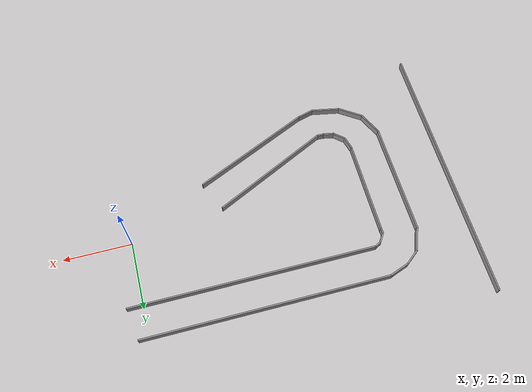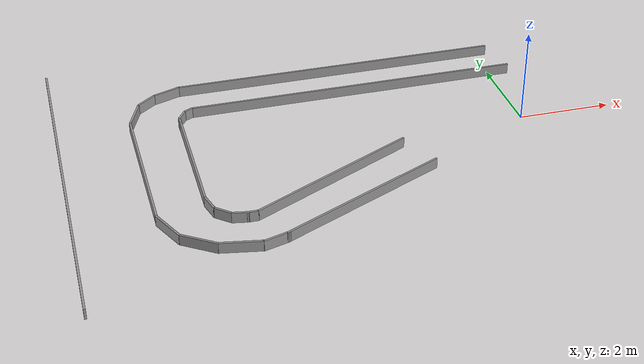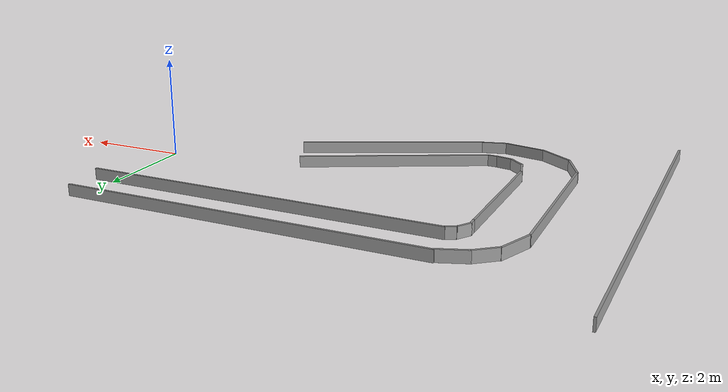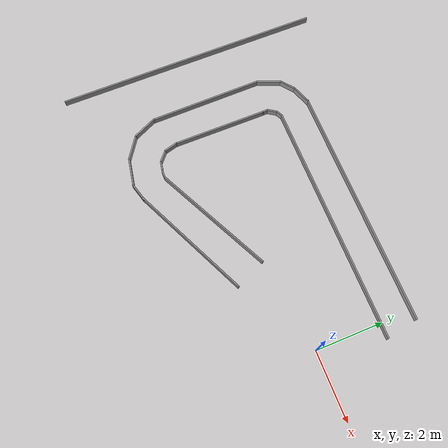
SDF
<sdf version="1.5">
 <world name="default">
  <model name="grey_wall_2">
   <link name="link">
    <pose>0 0 1.4 0 -0 0</pose>
    <inertial>
     <inertia><ixx>nan</ixx><ixy>0</ixy><ixz>0</ixz><iyy>nan</iyy><iyz>0</iyz><izz>nan</izz></inertia>
     <mass>0</mass>
    </inertial>
    <visual name="visual">
     <cast_shadows>0</cast_shadows>
     <geometry><box><size>7.20978 0.043266 0.226147</size></box></geometry>
     <material>
      <script>
       <uri>model://grey_wall/materials/scripts</uri>
       <uri>model://grey_wall/materials/textures</uri>
       <name>vrc/grey_wall</name>
      </script>
      <ambient>1 1 1 1</ambient>
      <diffuse>1 1 1 1</diffuse>
      <specular>0 0 0 1</specular>
      <emissive>0 0 0 1</emissive>
     </material>
    </visual>
    <collision name="collision">
     <geometry><box><size>7.20978 0.043266 0.226147</size></box></geometry>
     <surface>
      <friction>
       <ode><mu>1</mu><mu2>1</mu2><fdir1>0 0 0</fdir1><slip1>0</slip1><slip2>0</slip2></ode>
       <torsional>
        <coefficient>1</coefficient>
        <patch_radius>0</patch_radius>
        <surface_radius>0</surface_radius>
        <use_patch_radius>1</use_patch_radius>
        <ode><slip>0</slip></ode>
       </torsional>
      </friction>
      <bounce><restitution_coefficient>0</restitution_coefficient><threshold>1e+06</threshold></bounce>
      <contact>
       <collide_without_contact>0</collide_without_contact>
       <collide_without_contact_bitmask>1</collide_without_contact_bitmask>
       <collide_bitmask>1</collide_bitmask>
       <ode>
        <soft_cfm>0</soft_cfm>
        <soft_erp>0.2</soft_erp>
        <kp>1e+13</kp>
        <kd>1</kd>
        <max_vel>0.01</max_vel>
        <min_depth>0</min_depth>
       </ode>
       <bullet>
        <split_impulse>1</split_impulse>
        <split_impulse_penetration_threshold>-0.01</split_impulse_penetration_threshold>
        <soft_cfm>0</soft_cfm>
        <soft_erp>0.2</soft_erp>
        <kp>1e+13</kp>
        <kd>1</kd>
       </bullet>
      </contact>
     </surface>
    </collision>
   </link>
   <static>1</static>
   <pose>-3.31818 2.85803 -1.30759 0 -0 0</pose>
  </model>
  <model name="grey_wall_5">
   <link name="link">
    <pose>-0.467859 -0.097477 1.4 0 -0 0.009516</pose>
    <inertial>
     <inertia><ixx>nan</ixx><ixy>0</ixy><ixz>0</ixz><iyy>nan</iyy><iyz>0</iyz><izz>nan</izz></inertia>
     <mass>0</mass>
    </inertial>
    <visual name="visual">
     <cast_shadows>0</cast_shadows>
     <geometry><box><size>8.07319 0.043266 0.226147</size></box></geometry>
     <material>
      <script>
       <uri>model://grey_wall/materials/scripts</uri>
       <uri>model://grey_wall/materials/textures</uri>
       <name>vrc/grey_wall</name>
      </script>
      <ambient>1 1 1 1</ambient>
      <diffuse>1 1 1 1</diffuse>
      <specular>0 0 0 1</specular>
      <emissive>0 0 0 1</emissive>
     </material>
    </visual>
    <collision name="collision">
     <geometry><box><size>8.07319 0.043266 0.226147</size></box></geometry>
     <surface>
      <friction>
       <ode><mu>1</mu><mu2>1</mu2><fdir1>0 0 0</fdir1><slip1>0</slip1><slip2>0</slip2></ode>
       <torsional>
        <coefficient>1</coefficient>
        <patch_radius>0</patch_radius>
        <surface_radius>0</surface_radius>
        <use_patch_radius>1</use_patch_radius>
        <ode><slip>0</slip></ode>
       </torsional>
      </friction>
      <bounce><restitution_coefficient>0</restitution_coefficient><threshold>1e+06</threshold></bounce>
      <contact>
       <collide_without_contact>0</collide_without_contact>
       <collide_without_contact_bitmask>1</collide_without_contact_bitmask>
       <collide_bitmask>1</collide_bitmask>
       <ode>
        <soft_cfm>0</soft_cfm>
        <soft_erp>0.2</soft_erp>
        <kp>1e+13</kp>
        <kd>1</kd>
        <max_vel>0.01</max_vel>
        <min_depth>0</min_depth>
       </ode>
       <bullet>
        <split_impulse>1</split_impulse>
        <split_impulse_penetration_threshold>-0.01</split_impulse_penetration_threshold>
        <soft_cfm>0</soft_cfm>
        <soft_erp>0.2</soft_erp>
        <kp>1e+13</kp>
        <kd>1</kd>
       </bullet>
      </contact>
     </surface>
    </collision>
   </link>
   <static>1</static>
   <pose>-9.73387 0.474906 -1.30963 0 -0 1.55954</pose>
  </model>
  <model name="grey_wall_7">
   <link name="link">
    <pose>-0.064175 -0.02969 1.4 0 -0 0.020488</pose>
    <inertial>
     <inertia><ixx>nan</ixx><ixy>0</ixy><ixz>0</ixz><iyy>nan</iyy><iyz>0</iyz><izz>nan</izz></inertia>
     <mass>0</mass>
    </inertial>
    <visual name="visual">
     <cast_shadows>0</cast_shadows>
     <geometry><box><size>3.42398 0.043266 0.226147</size></box></geometry>
     <material>
      <script>
       <uri>model://grey_wall/materials/scripts</uri>
       <uri>model://grey_wall/materials/textures</uri>
       <name>vrc/grey_wall</name>
      </script>
      <ambient>1 1 1 1</ambient>
      <diffuse>1 1 1 1</diffuse>
      <specular>0 0 0 1</specular>
      <emissive>0 0 0 1</emissive>
     </material>
    </visual>
    <collision name="collision">
     <geometry><box><size>3.42398 0.043266 0.226147</size></box></geometry>
     <surface>
      <friction>
       <ode><mu>1</mu><mu2>1</mu2><fdir1>0 0 0</fdir1><slip1>0</slip1><slip2>0</slip2></ode>
       <torsional>
        <coefficient>1</coefficient>
        <patch_radius>0</patch_radius>
        <surface_radius>0</surface_radius>
        <use_patch_radius>1</use_patch_radius>
        <ode><slip>0</slip></ode>
       </torsional>
      </friction>
      <bounce><restitution_coefficient>0</restitution_coefficient><threshold>1e+06</threshold></bounce>
      <contact>
       <collide_without_contact>0</collide_without_contact>
       <collide_without_contact_bitmask>1</collide_without_contact_bitmask>
       <collide_bitmask>1</collide_bitmask>
       <ode>
        <soft_cfm>0</soft_cfm>
        <soft_erp>0.2</soft_erp>
        <kp>1e+13</kp>
        <kd>1</kd>
        <max_vel>0.01</max_vel>
        <min_depth>0</min_depth>
       </ode>
       <bullet>
        <split_impulse>1</split_impulse>
        <split_impulse_penetration_threshold>-0.01</split_impulse_penetration_threshold>
        <soft_cfm>0</soft_cfm>
        <soft_erp>0.2</soft_erp>
        <kp>1e+13</kp>
        <kd>1</kd>
       </bullet>
      </contact>
     </surface>
    </collision>
   </link>
   <static>1</static>
   <pose>-8.11068 0.042246 -1.30963 0 -0 1.55954</pose>
  </model>
  <model name="grey_wall_8">
   <link name="link">
    <pose>0.112948 -0.0488 1.4 0 0 -0.362822</pose>
    <inertial>
     <inertia><ixx>nan</ixx><ixy>0</ixy><ixz>0</ixz><iyy>nan</iyy><iyz>0</iyz><izz>nan</izz></inertia>
     <mass>0</mass>
    </inertial>
    <visual name="visual">
     <cast_shadows>0</cast_shadows>
     <geometry><box><size>0.753854 0.043266 0.226147</size></box></geometry>
     <material>
      <script>
       <uri>model://grey_wall/materials/scripts</uri>
       <uri>model://grey_wall/materials/textures</uri>
       <name>vrc/grey_wall</name>
      </script>
      <ambient>1 1 1 1</ambient>
      <diffuse>1 1 1 1</diffuse>
      <specular>0 0 0 1</specular>
      <emissive>0 0 0 1</emissive>
     </material>
    </visual>
    <collision name="collision">
     <geometry><box><size>0.753854 0.043266 0.226147</size></box></geometry>
     <surface>
      <friction>
       <ode><mu>1</mu><mu2>1</mu2><fdir1>0 0 0</fdir1><slip1>0</slip1><slip2>0</slip2></ode>
       <torsional>
        <coefficient>1</coefficient>
        <patch_radius>0</patch_radius>
        <surface_radius>0</surface_radius>
        <use_patch_radius>1</use_patch_radius>
        <ode><slip>0</slip></ode>
       </torsional>
      </friction>
      <bounce><restitution_coefficient>0</restitution_coefficient><threshold>1e+06</threshold></bounce>
      <contact>
       <collide_without_contact>0</collide_without_contact>
       <collide_without_contact_bitmask>1</collide_without_contact_bitmask>
       <collide_bitmask>1</collide_bitmask>
       <ode>
        <soft_cfm>0</soft_cfm>
        <soft_erp>0.2</soft_erp>
        <kp>1e+13</kp>
        <kd>1</kd>
        <max_vel>0.01</max_vel>
        <min_depth>0</min_depth>
       </ode>
       <bullet>
        <split_impulse>1</split_impulse>
        <split_impulse_penetration_threshold>-0.01</split_impulse_penetration_threshold>
        <soft_cfm>0</soft_cfm>
        <soft_erp>0.2</soft_erp>
        <kp>1e+13</kp>
        <kd>1</kd>
       </bullet>
      </contact>
     </surface>
    </collision>
   </link>
   <static>1</static>
   <pose>-8.0118 1.89691 -1.30963 0 -0 1.55954</pose>
  </model>
  <model name="grey_wall_9">
   <link name="link">
    <pose>-0.058506 -0.047315 1.4 0 -0 0.675401</pose>
    <inertial>
     <inertia><ixx>nan</ixx><ixy>0</ixy><ixz>0</ixz><iyy>nan</iyy><iyz>0</iyz><izz>nan</izz></inertia>
     <mass>0</mass>
    </inertial>
    <visual name="visual">
     <cast_shadows>0</cast_shadows>
     <geometry><box><size>0.500666 0.043266 0.226147</size></box></geometry>
     <material>
      <script>
       <uri>model://grey_wall/materials/scripts</uri>
       <uri>model://grey_wall/materials/textures</uri>
       <name>vrc/grey_wall</name>
      </script>
      <ambient>1 1 1 1</ambient>
      <diffuse>1 1 1 1</diffuse>
      <specular>0 0 0 1</specular>
      <emissive>0 0 0 1</emissive>
     </material>
    </visual>
    <collision name="collision">
     <geometry><box><size>0.500666 0.043266 0.226147</size></box></geometry>
     <surface>
      <friction>
       <ode><mu>1</mu><mu2>1</mu2><fdir1>0 0 0</fdir1><slip1>0</slip1><slip2>0</slip2></ode>
       <torsional>
        <coefficient>1</coefficient>
        <patch_radius>0</patch_radius>
        <surface_radius>0</surface_radius>
        <use_patch_radius>1</use_patch_radius>
        <ode><slip>0</slip></ode>
       </torsional>
      </friction>
      <bounce><restitution_coefficient>0</restitution_coefficient><threshold>1e+06</threshold></bounce>
      <contact>
       <collide_without_contact>0</collide_without_contact>
       <collide_without_contact_bitmask>1</collide_without_contact_bitmask>
       <collide_bitmask>1</collide_bitmask>
       <ode>
        <soft_cfm>0</soft_cfm>
        <soft_erp>0.2</soft_erp>
        <kp>1e+13</kp>
        <kd>1</kd>
        <max_vel>0.01</max_vel>
        <min_depth>0</min_depth>
       </ode>
       <bullet>
        <split_impulse>1</split_impulse>
        <split_impulse_penetration_threshold>-0.01</split_impulse_penetration_threshold>
        <soft_cfm>0</soft_cfm>
        <soft_erp>0.2</soft_erp>
        <kp>1e+13</kp>
        <kd>1</kd>
       </bullet>
      </contact>
     </surface>
    </collision>
   </link>
   <static>1</static>
   <pose>-7.5792 2.5463 -1.30539 0 -0 0</pose>
  </model>
  <model name="grey_wall_10">
   <link name="link">
    <pose>-0.124295 -0.038559 1.4 0 -0 0.344466</pose>
    <inertial>
     <inertia><ixx>nan</ixx><ixy>0</ixy><ixz>0</ixz><iyy>nan</iyy><iyz>0</iyz><izz>nan</izz></inertia>
     <mass>0</mass>
    </inertial>
    <visual name="visual">
     <cast_shadows>0</cast_shadows>
     <geometry><box><size>0.619827 0.043266 0.226147</size></box></geometry>
     <material>
      <script>
       <uri>model://grey_wall/materials/scripts</uri>
       <uri>model://grey_wall/materials/textures</uri>
       <name>vrc/grey_wall</name>
      </script>
      <ambient>1 1 1 1</ambient>
      <diffuse>1 1 1 1</diffuse>
      <specular>0 0 0 1</specular>
      <emissive>0 0 0 1</emissive>
     </material>
    </visual>
    <collision name="collision">
     <geometry><box><size>0.619827 0.043266 0.226147</size></box></geometry>
     <surface>
      <friction>
       <ode><mu>1</mu><mu2>1</mu2><fdir1>0 0 0</fdir1><slip1>0</slip1><slip2>0</slip2></ode>
       <torsional>
        <coefficient>1</coefficient>
        <patch_radius>0</patch_radius>
        <surface_radius>0</surface_radius>
        <use_patch_radius>1</use_patch_radius>
        <ode><slip>0</slip></ode>
       </torsional>
      </friction>
      <bounce><restitution_coefficient>0</restitution_coefficient><threshold>1e+06</threshold></bounce>
      <contact>
       <collide_without_contact>0</collide_without_contact>
       <collide_without_contact_bitmask>1</collide_without_contact_bitmask>
       <collide_bitmask>1</collide_bitmask>
       <ode>
        <soft_cfm>0</soft_cfm>
        <soft_erp>0.2</soft_erp>
        <kp>1e+13</kp>
        <kd>1</kd>
        <max_vel>0.01</max_vel>
        <min_depth>0</min_depth>
       </ode>
       <bullet>
        <split_impulse>1</split_impulse>
        <split_impulse_penetration_threshold>-0.01</split_impulse_penetration_threshold>
        <soft_cfm>0</soft_cfm>
        <soft_erp>0.2</soft_erp>
        <kp>1e+13</kp>
        <kd>1</kd>
       </bullet>
      </contact>
     </surface>
    </collision>
   </link>
   <static>1</static>
   <pose>-7.0396 2.79261 -1.30539 0 -0 0</pose>
  </model>
  <model name="grey_wall_11">
   <link name="link">
    <pose>-0.026662 0.026915 1.4 0 -0 0.431274</pose>
    <inertial>
     <inertia><ixx>nan</ixx><ixy>0</ixy><ixz>0</ixz><iyy>nan</iyy><iyz>0</iyz><izz>nan</izz></inertia>
     <mass>0</mass>
    </inertial>
    <visual name="visual">
     <cast_shadows>0</cast_shadows>
     <geometry><box><size>3.81606 0.043266 0.226147</size></box></geometry>
     <material>
      <script>
       <uri>model://grey_wall/materials/scripts</uri>
       <uri>model://grey_wall/materials/textures</uri>
       <name>vrc/grey_wall</name>
      </script>
      <ambient>1 1 1 1</ambient>
      <diffuse>1 1 1 1</diffuse>
      <specular>0 0 0 1</specular>
      <emissive>0 0 0 1</emissive>
     </material>
    </visual>
    <collision name="collision">
     <geometry><box><size>3.81606 0.043266 0.226147</size></box></geometry>
     <surface>
      <friction>
       <ode><mu>1</mu><mu2>1</mu2><fdir1>0 0 0</fdir1><slip1>0</slip1><slip2>0</slip2></ode>
       <torsional>
        <coefficient>1</coefficient>
        <patch_radius>0</patch_radius>
        <surface_radius>0</surface_radius>
        <use_patch_radius>1</use_patch_radius>
        <ode><slip>0</slip></ode>
       </torsional>
      </friction>
      <bounce><restitution_coefficient>0</restitution_coefficient><threshold>1e+06</threshold></bounce>
      <contact>
       <collide_without_contact>0</collide_without_contact>
       <collide_without_contact_bitmask>1</collide_without_contact_bitmask>
       <collide_bitmask>1</collide_bitmask>
       <ode>
        <soft_cfm>0</soft_cfm>
        <soft_erp>0.2</soft_erp>
        <kp>1e+13</kp>
        <kd>1</kd>
        <max_vel>0.01</max_vel>
        <min_depth>0</min_depth>
       </ode>
       <bullet>
        <split_impulse>1</split_impulse>
        <split_impulse_penetration_threshold>-0.01</split_impulse_penetration_threshold>
        <soft_cfm>0</soft_cfm>
        <soft_erp>0.2</soft_erp>
        <kp>1e+13</kp>
        <kd>1</kd>
       </bullet>
      </contact>
     </surface>
    </collision>
   </link>
   <static>1</static>
   <pose>-4.07016 -2.10175 -1.30331 0 -0 0</pose>
  </model>
  <model name="grey_wall_14">
   <link name="link">
    <pose>-0.07983 0.081676 1.4 0 0 -0.601795</pose>
    <inertial>
     <inertia><ixx>nan</ixx><ixy>0</ixy><ixz>0</ixz><iyy>nan</iyy><iyz>0</iyz><izz>nan</izz></inertia>
     <mass>0</mass>
    </inertial>
    <visual name="visual">
     <cast_shadows>0</cast_shadows>
     <geometry><box><size>0.789146 0.043266 0.226147</size></box></geometry>
     <material>
      <script>
       <uri>model://grey_wall/materials/scripts</uri>
       <uri>model://grey_wall/materials/textures</uri>
       <name>vrc/grey_wall</name>
      </script>
      <ambient>1 1 1 1</ambient>
      <diffuse>1 1 1 1</diffuse>
      <specular>0 0 0 1</specular>
      <emissive>0 0 0 1</emissive>
     </material>
    </visual>
    <collision name="collision">
     <geometry><box><size>0.789146 0.043266 0.226147</size></box></geometry>
     <surface>
      <friction>
       <ode><mu>1</mu><mu2>1</mu2><fdir1>0 0 0</fdir1><slip1>0</slip1><slip2>0</slip2></ode>
       <torsional>
        <coefficient>1</coefficient>
        <patch_radius>0</patch_radius>
        <surface_radius>0</surface_radius>
        <use_patch_radius>1</use_patch_radius>
        <ode><slip>0</slip></ode>
       </torsional>
      </friction>
      <bounce><restitution_coefficient>0</restitution_coefficient><threshold>1e+06</threshold></bounce>
      <contact>
       <collide_without_contact>0</collide_without_contact>
       <collide_without_contact_bitmask>1</collide_without_contact_bitmask>
       <collide_bitmask>1</collide_bitmask>
       <ode>
        <soft_cfm>0</soft_cfm>
        <soft_erp>0.2</soft_erp>
        <kp>1e+13</kp>
        <kd>1</kd>
        <max_vel>0.01</max_vel>
        <min_depth>0</min_depth>
       </ode>
       <bullet>
        <split_impulse>1</split_impulse>
        <split_impulse_penetration_threshold>-0.01</split_impulse_penetration_threshold>
        <soft_cfm>0</soft_cfm>
        <soft_erp>0.2</soft_erp>
        <kp>1e+13</kp>
        <kd>1</kd>
       </bullet>
      </contact>
     </surface>
    </collision>
   </link>
   <static>1</static>
   <pose>-7.35341 -2.70293 -1.30539 0 -0 0</pose>
  </model>
  <model name="grey_wall_15">
   <link name="link">
    <pose>0.107141 -0.075692 1.4 0 -0 2.00429</pose>
    <inertial>
     <inertia><ixx>nan</ixx><ixy>0</ixy><ixz>0</ixz><iyy>nan</iyy><iyz>0</iyz><izz>nan</izz></inertia>
     <mass>0</mass>
    </inertial>
    <visual name="visual">
     <cast_shadows>0</cast_shadows>
     <geometry><box><size>0.783473 0.043266 0.226147</size></box></geometry>
     <material>
      <script>
       <uri>model://grey_wall/materials/scripts</uri>
       <uri>model://grey_wall/materials/textures</uri>
       <name>vrc/grey_wall</name>
      </script>
      <ambient>1 1 1 1</ambient>
      <diffuse>1 1 1 1</diffuse>
      <specular>0 0 0 1</specular>
      <emissive>0 0 0 1</emissive>
     </material>
    </visual>
    <collision name="collision">
     <geometry><box><size>0.783473 0.043266 0.226147</size></box></geometry>
     <surface>
      <friction>
       <ode><mu>1</mu><mu2>1</mu2><fdir1>0 0 0</fdir1><slip1>0</slip1><slip2>0</slip2></ode>
       <torsional>
        <coefficient>1</coefficient>
        <patch_radius>0</patch_radius>
        <surface_radius>0</surface_radius>
        <use_patch_radius>1</use_patch_radius>
        <ode><slip>0</slip></ode>
       </torsional>
      </friction>
      <bounce><restitution_coefficient>0</restitution_coefficient><threshold>1e+06</threshold></bounce>
      <contact>
       <collide_without_contact>0</collide_without_contact>
       <collide_without_contact_bitmask>1</collide_without_contact_bitmask>
       <collide_bitmask>1</collide_bitmask>
       <ode>
        <soft_cfm>0</soft_cfm>
        <soft_erp>0.2</soft_erp>
        <kp>1e+13</kp>
        <kd>1</kd>
        <max_vel>0.01</max_vel>
        <min_depth>0</min_depth>
       </ode>
       <bullet>
        <split_impulse>1</split_impulse>
        <split_impulse_penetration_threshold>-0.01</split_impulse_penetration_threshold>
        <soft_cfm>0</soft_cfm>
        <soft_erp>0.2</soft_erp>
        <kp>1e+13</kp>
        <kd>1</kd>
       </bullet>
      </contact>
     </surface>
    </collision>
   </link>
   <static>1</static>
   <pose>-8.01965 -1.98265 -1.30539 0 -0 0</pose>
  </model>
  <model name="grey_wall_19">
   <link name="link">
    <pose>0.087469 0.011541 1.4 0 0 -0.183893</pose>
    <inertial>
     <inertia><ixx>nan</ixx><ixy>0</ixy><ixz>0</ixz><iyy>nan</iyy><iyz>0</iyz><izz>nan</izz></inertia>
     <mass>0</mass>
    </inertial>
    <visual name="visual">
     <cast_shadows>0</cast_shadows>
     <geometry><box><size>0.85162 0.043266 0.226147</size></box></geometry>
     <material>
      <script>
       <uri>model://grey_wall/materials/scripts</uri>
       <uri>model://grey_wall/materials/textures</uri>
       <name>vrc/grey_wall</name>
      </script>
      <ambient>1 1 1 1</ambient>
      <diffuse>1 1 1 1</diffuse>
      <specular>0 0 0 1</specular>
      <emissive>0 0 0 1</emissive>
     </material>
    </visual>
    <collision name="collision">
     <geometry><box><size>0.85162 0.043266 0.226147</size></box></geometry>
     <surface>
      <friction>
       <ode><mu>1</mu><mu2>1</mu2><fdir1>0 0 0</fdir1><slip1>0</slip1><slip2>0</slip2></ode>
       <torsional>
        <coefficient>1</coefficient>
        <patch_radius>0</patch_radius>
        <surface_radius>0</surface_radius>
        <use_patch_radius>1</use_patch_radius>
        <ode><slip>0</slip></ode>
       </torsional>
      </friction>
      <bounce><restitution_coefficient>0</restitution_coefficient><threshold>1e+06</threshold></bounce>
      <contact>
       <collide_without_contact>0</collide_without_contact>
       <collide_without_contact_bitmask>1</collide_without_contact_bitmask>
       <collide_bitmask>1</collide_bitmask>
       <ode>
        <soft_cfm>0</soft_cfm>
        <soft_erp>0.2</soft_erp>
        <kp>1e+13</kp>
        <kd>1</kd>
        <max_vel>0.01</max_vel>
        <min_depth>0</min_depth>
       </ode>
       <bullet>
        <split_impulse>1</split_impulse>
        <split_impulse_penetration_threshold>-0.01</split_impulse_penetration_threshold>
        <soft_cfm>0</soft_cfm>
        <soft_erp>0.2</soft_erp>
        <kp>1e+13</kp>
        <kd>1</kd>
       </bullet>
      </contact>
     </surface>
    </collision>
   </link>
   <static>1</static>
   <pose>-6.79091 -2.92555 -1.30539 0 -0 0</pose>
  </model>
  <model name="grey_wall_20">
   <link name="link">
    <pose>-0.003183 0.005606 1.4 0 -0 0.275384</pose>
    <inertial>
     <inertia><ixx>nan</ixx><ixy>0</ixy><ixz>0</ixz><iyy>nan</iyy><iyz>0</iyz><izz>nan</izz></inertia>
     <mass>0</mass>
    </inertial>
    <visual name="visual">
     <cast_shadows>0</cast_shadows>
     <geometry><box><size>0.558925 0.043266 0.226147</size></box></geometry>
     <material>
      <script>
       <uri>model://grey_wall/materials/scripts</uri>
       <uri>model://grey_wall/materials/textures</uri>
       <name>vrc/grey_wall</name>
      </script>
      <ambient>1 1 1 1</ambient>
      <diffuse>1 1 1 1</diffuse>
      <specular>0 0 0 1</specular>
      <emissive>0 0 0 1</emissive>
     </material>
    </visual>
    <collision name="collision">
     <geometry><box><size>0.558925 0.043266 0.226147</size></box></geometry>
     <surface>
      <friction>
       <ode><mu>1</mu><mu2>1</mu2><fdir1>0 0 0</fdir1><slip1>0</slip1><slip2>0</slip2></ode>
       <torsional>
        <coefficient>1</coefficient>
        <patch_radius>0</patch_radius>
        <surface_radius>0</surface_radius>
        <use_patch_radius>1</use_patch_radius>
        <ode><slip>0</slip></ode>
       </torsional>
      </friction>
      <bounce><restitution_coefficient>0</restitution_coefficient><threshold>1e+06</threshold></bounce>
      <contact>
       <collide_without_contact>0</collide_without_contact>
       <collide_without_contact_bitmask>1</collide_without_contact_bitmask>
       <collide_bitmask>1</collide_bitmask>
       <ode>
        <soft_cfm>0</soft_cfm>
        <soft_erp>0.2</soft_erp>
        <kp>1e+13</kp>
        <kd>1</kd>
        <max_vel>0.01</max_vel>
        <min_depth>0</min_depth>
       </ode>
       <bullet>
        <split_impulse>1</split_impulse>
        <split_impulse_penetration_threshold>-0.01</split_impulse_penetration_threshold>
        <soft_cfm>0</soft_cfm>
        <soft_erp>0.2</soft_erp>
        <kp>1e+13</kp>
        <kd>1</kd>
       </bullet>
      </contact>
     </surface>
    </collision>
   </link>
   <static>1</static>
   <pose>-6.02923 -2.92892 -1.30539 0 -0 0</pose>
  </model>
  <model name="grey_wall_25">
   <link name="link">
    <pose>0.017817 -0.013769 1.4 0 -0 0.455224</pose>
    <inertial>
     <inertia><ixx>nan</ixx><ixy>0</ixy><ixz>0</ixz><iyy>nan</iyy><iyz>0</iyz><izz>nan</izz></inertia>
     <mass>0</mass>
    </inertial>
    <visual name="visual">
     <cast_shadows>0</cast_shadows>
     <geometry><box><size>3.81606 0.043266 0.226147</size></box></geometry>
     <material>
      <script>
       <uri>model://grey_wall/materials/scripts</uri>
       <uri>model://grey_wall/materials/textures</uri>
       <name>vrc/grey_wall</name>
      </script>
      <ambient>1 1 1 1</ambient>
      <diffuse>1 1 1 1</diffuse>
      <specular>0 0 0 1</specular>
      <emissive>0 0 0 1</emissive>
     </material>
    </visual>
    <collision name="collision">
     <geometry><box><size>3.81606 0.043266 0.226147</size></box></geometry>
     <surface>
      <friction>
       <ode><mu>1</mu><mu2>1</mu2><fdir1>0 0 0</fdir1><slip1>0</slip1><slip2>0</slip2></ode>
       <torsional>
        <coefficient>1</coefficient>
        <patch_radius>0</patch_radius>
        <surface_radius>0</surface_radius>
        <use_patch_radius>1</use_patch_radius>
        <ode><slip>0</slip></ode>
       </torsional>
      </friction>
      <bounce><restitution_coefficient>0</restitution_coefficient><threshold>1e+06</threshold></bounce>
      <contact>
       <collide_without_contact>0</collide_without_contact>
       <collide_without_contact_bitmask>1</collide_without_contact_bitmask>
       <collide_bitmask>1</collide_bitmask>
       <ode>
        <soft_cfm>0</soft_cfm>
        <soft_erp>0.2</soft_erp>
        <kp>1e+13</kp>
        <kd>1</kd>
        <max_vel>0.01</max_vel>
        <min_depth>0</min_depth>
       </ode>
       <bullet>
        <split_impulse>1</split_impulse>
        <split_impulse_penetration_threshold>-0.01</split_impulse_penetration_threshold>
        <soft_cfm>0</soft_cfm>
        <soft_erp>0.2</soft_erp>
        <kp>1e+13</kp>
        <kd>1</kd>
       </bullet>
      </contact>
     </surface>
    </collision>
   </link>
   <static>1</static>
   <pose>-4.49945 -1.20909 -1.30331 0 -0 0</pose>
  </model>
  <model name="grey_wall_16">
   <link name="link">
    <pose>0 0 1.4 0 -0 0</pose>
    <inertial>
     <inertia><ixx>nan</ixx><ixy>0</ixy><ixz>0</ixz><iyy>nan</iyy><iyz>0</iyz><izz>nan</izz></inertia>
     <mass>0</mass>
    </inertial>
    <visual name="visual">
     <cast_shadows>0</cast_shadows>
     <geometry><box><size>7.20978 0.043266 0.226147</size></box></geometry>
     <material>
      <script>
       <uri>model://grey_wall/materials/scripts</uri>
       <uri>model://grey_wall/materials/textures</uri>
       <name>vrc/grey_wall</name>
      </script>
      <ambient>1 1 1 1</ambient>
      <diffuse>1 1 1 1</diffuse>
      <specular>0 0 0 1</specular>
      <emissive>0 0 0 1</emissive>
     </material>
    </visual>
    <collision name="collision">
     <geometry><box><size>7.20978 0.043266 0.226147</size></box></geometry>
     <surface>
      <friction>
       <ode><mu>1</mu><mu2>1</mu2><fdir1>0 0 0</fdir1><slip1>0</slip1><slip2>0</slip2></ode>
       <torsional>
        <coefficient>1</coefficient>
        <patch_radius>0</patch_radius>
        <surface_radius>0</surface_radius>
        <use_patch_radius>1</use_patch_radius>
        <ode><slip>0</slip></ode>
       </torsional>
      </friction>
      <bounce><restitution_coefficient>0</restitution_coefficient><threshold>1e+06</threshold></bounce>
      <contact>
       <collide_without_contact>0</collide_without_contact>
       <collide_without_contact_bitmask>1</collide_without_contact_bitmask>
       <collide_bitmask>1</collide_bitmask>
       <ode>
        <soft_cfm>0</soft_cfm>
        <soft_erp>0.2</soft_erp>
        <kp>1e+13</kp>
        <kd>1</kd>
        <max_vel>0.01</max_vel>
        <min_depth>0</min_depth>
       </ode>
       <bullet>
        <split_impulse>1</split_impulse>
        <split_impulse_penetration_threshold>-0.01</split_impulse_penetration_threshold>
        <soft_cfm>0</soft_cfm>
        <soft_erp>0.2</soft_erp>
        <kp>1e+13</kp>
        <kd>1</kd>
       </bullet>
      </contact>
     </surface>
    </collision>
   </link>
   <static>1</static>
   <pose>-3.148 1.91993 -1.30759 0 -0 0</pose>
  </model>
  <model name="grey_wall_41">
   <link name="link">
    <pose>0.112404 0.030945 1.4 0 -0 0.009516</pose>
    <inertial>
     <inertia><ixx>nan</ixx><ixy>0</ixy><ixz>0</ixz><iyy>nan</iyy><iyz>0</iyz><izz>nan</izz></inertia>
     <mass>0</mass>
    </inertial>
    <visual name="visual">
     <cast_shadows>0</cast_shadows>
     <geometry><box><size>2.82247 0.043266 0.226147</size></box></geometry>
     <material>
      <script>
       <uri>model://grey_wall/materials/scripts</uri>
       <uri>model://grey_wall/materials/textures</uri>
       <name>vrc/grey_wall</name>
      </script>
      <ambient>1 1 1 1</ambient>
      <diffuse>1 1 1 1</diffuse>
      <specular>0 0 0 1</specular>
      <emissive>0 0 0 1</emissive>
     </material>
    </visual>
    <collision name="collision">
     <geometry><box><size>2.82247 0.043266 0.226147</size></box></geometry>
     <surface>
      <friction>
       <ode><mu>1</mu><mu2>1</mu2><fdir1>0 0 0</fdir1><slip1>0</slip1><slip2>0</slip2></ode>
       <torsional>
        <coefficient>1</coefficient>
        <patch_radius>0</patch_radius>
        <surface_radius>0</surface_radius>
        <use_patch_radius>1</use_patch_radius>
        <ode><slip>0</slip></ode>
       </torsional>
      </friction>
      <bounce><restitution_coefficient>0</restitution_coefficient><threshold>1e+06</threshold></bounce>
      <contact>
       <collide_without_contact>0</collide_without_contact>
       <collide_without_contact_bitmask>1</collide_without_contact_bitmask>
       <collide_bitmask>1</collide_bitmask>
       <ode>
        <soft_cfm>0</soft_cfm>
        <soft_erp>0.2</soft_erp>
        <kp>1e+13</kp>
        <kd>1</kd>
        <max_vel>0.01</max_vel>
        <min_depth>0</min_depth>
       </ode>
       <bullet>
        <split_impulse>1</split_impulse>
        <split_impulse_penetration_threshold>-0.01</split_impulse_penetration_threshold>
        <soft_cfm>0</soft_cfm>
        <soft_erp>0.2</soft_erp>
        <kp>1e+13</kp>
        <kd>1</kd>
       </bullet>
      </contact>
     </surface>
    </collision>
   </link>
   <static>1</static>
   <pose>-7.0448 -0.073707 -1.30963 0 -0 1.55954</pose>
  </model>
  <model name="grey_wall_42">
   <link name="link">
    <pose>-0.33267 0.448285 1.4 0 0 -1.30708</pose>
    <inertial>
     <inertia><ixx>nan</ixx><ixy>0</ixy><ixz>0</ixz><iyy>nan</iyy><iyz>0</iyz><izz>nan</izz></inertia>
     <mass>0</mass>
    </inertial>
    <visual name="visual">
     <cast_shadows>0</cast_shadows>
     <geometry><box><size>0.42483 0.043266 0.226147</size></box></geometry>
     <material>
      <script>
       <uri>model://grey_wall/materials/scripts</uri>
       <uri>model://grey_wall/materials/textures</uri>
       <name>vrc/grey_wall</name>
      </script>
      <ambient>1 1 1 1</ambient>
      <diffuse>1 1 1 1</diffuse>
      <specular>0 0 0 1</specular>
      <emissive>0 0 0 1</emissive>
     </material>
    </visual>
    <collision name="collision">
     <geometry><box><size>0.42483 0.043266 0.226147</size></box></geometry>
     <surface>
      <friction>
       <ode><mu>1</mu><mu2>1</mu2><fdir1>0 0 0</fdir1><slip1>0</slip1><slip2>0</slip2></ode>
       <torsional>
        <coefficient>1</coefficient>
        <patch_radius>0</patch_radius>
        <surface_radius>0</surface_radius>
        <use_patch_radius>1</use_patch_radius>
        <ode><slip>0</slip></ode>
       </torsional>
      </friction>
      <bounce><restitution_coefficient>0</restitution_coefficient><threshold>1e+06</threshold></bounce>
      <contact>
       <collide_without_contact>0</collide_without_contact>
       <collide_without_contact_bitmask>1</collide_without_contact_bitmask>
       <collide_bitmask>1</collide_bitmask>
       <ode>
        <soft_cfm>0</soft_cfm>
        <soft_erp>0.2</soft_erp>
        <kp>1e+13</kp>
        <kd>1</kd>
        <max_vel>0.01</max_vel>
        <min_depth>0</min_depth>
       </ode>
       <bullet>
        <split_impulse>1</split_impulse>
        <split_impulse_penetration_threshold>-0.01</split_impulse_penetration_threshold>
        <soft_cfm>0</soft_cfm>
        <soft_erp>0.2</soft_erp>
        <kp>1e+13</kp>
        <kd>1</kd>
       </bullet>
      </contact>
     </surface>
    </collision>
   </link>
   <static>1</static>
   <pose>-6.69311 -2.00487 -1.30539 0 -0 0</pose>
  </model>
  <model name="grey_wall_43">
   <link name="link">
    <pose>0.087469 0.011541 1.4 0 0 -0.183893</pose>
    <inertial>
     <inertia><ixx>nan</ixx><ixy>0</ixy><ixz>0</ixz><iyy>nan</iyy><iyz>0</iyz><izz>nan</izz></inertia>
     <mass>0</mass>
    </inertial>
    <visual name="visual">
     <cast_shadows>0</cast_shadows>
     <geometry><box><size>0.343648 0.043266 0.226147</size></box></geometry>
     <material>
      <script>
       <uri>model://grey_wall/materials/scripts</uri>
       <uri>model://grey_wall/materials/textures</uri>
       <name>vrc/grey_wall</name>
      </script>
      <ambient>1 1 1 1</ambient>
      <diffuse>1 1 1 1</diffuse>
      <specular>0 0 0 1</specular>
      <emissive>0 0 0 1</emissive>
     </material>
    </visual>
    <collision name="collision">
     <geometry><box><size>0.343648 0.043266 0.226147</size></box></geometry>
     <surface>
      <friction>
       <ode><mu>1</mu><mu2>1</mu2><fdir1>0 0 0</fdir1><slip1>0</slip1><slip2>0</slip2></ode>
       <torsional>
        <coefficient>1</coefficient>
        <patch_radius>0</patch_radius>
        <surface_radius>0</surface_radius>
        <use_patch_radius>1</use_patch_radius>
        <ode><slip>0</slip></ode>
       </torsional>
      </friction>
      <bounce><restitution_coefficient>0</restitution_coefficient><threshold>1e+06</threshold></bounce>
      <contact>
       <collide_without_contact>0</collide_without_contact>
       <collide_without_contact_bitmask>1</collide_without_contact_bitmask>
       <collide_bitmask>1</collide_bitmask>
       <ode>
        <soft_cfm>0</soft_cfm>
        <soft_erp>0.2</soft_erp>
        <kp>1e+13</kp>
        <kd>1</kd>
        <max_vel>0.01</max_vel>
        <min_depth>0</min_depth>
       </ode>
       <bullet>
        <split_impulse>1</split_impulse>
        <split_impulse_penetration_threshold>-0.01</split_impulse_penetration_threshold>
        <soft_cfm>0</soft_cfm>
        <soft_erp>0.2</soft_erp>
        <kp>1e+13</kp>
        <kd>1</kd>
       </bullet>
      </contact>
     </surface>
    </collision>
   </link>
   <static>1</static>
   <pose>-6.61627 -2.03791 -1.30539 0 -0 0</pose>
  </model>
  <model name="grey_wall_44">
   <link name="link">
    <pose>0.137337 -0.016241 1.4 0 0 -0.01029</pose>
    <inertial>
     <inertia><ixx>nan</ixx><ixy>0</ixy><ixz>0</ixz><iyy>nan</iyy><iyz>0</iyz><izz>nan</izz></inertia>
     <mass>0</mass>
    </inertial>
    <visual name="visual">
     <cast_shadows>0</cast_shadows>
     <geometry><box><size>0.231964 0.043266 0.226147</size></box></geometry>
     <material>
      <script>
       <uri>model://grey_wall/materials/scripts</uri>
       <uri>model://grey_wall/materials/textures</uri>
       <name>vrc/grey_wall</name>
      </script>
      <ambient>1 1 1 1</ambient>
      <diffuse>1 1 1 1</diffuse>
      <specular>0 0 0 1</specular>
      <emissive>0 0 0 1</emissive>
     </material>
    </visual>
    <collision name="collision">
     <geometry><box><size>0.231964 0.043266 0.226147</size></box></geometry>
     <surface>
      <friction>
       <ode><mu>1</mu><mu2>1</mu2><fdir1>0 0 0</fdir1><slip1>0</slip1><slip2>0</slip2></ode>
       <torsional>
        <coefficient>1</coefficient>
        <patch_radius>0</patch_radius>
        <surface_radius>0</surface_radius>
        <use_patch_radius>1</use_patch_radius>
        <ode><slip>0</slip></ode>
       </torsional>
      </friction>
      <bounce><restitution_coefficient>0</restitution_coefficient><threshold>1e+06</threshold></bounce>
      <contact>
       <collide_without_contact>0</collide_without_contact>
       <collide_without_contact_bitmask>1</collide_without_contact_bitmask>
       <collide_bitmask>1</collide_bitmask>
       <ode>
        <soft_cfm>0</soft_cfm>
        <soft_erp>0.2</soft_erp>
        <kp>1e+13</kp>
        <kd>1</kd>
        <max_vel>0.01</max_vel>
        <min_depth>0</min_depth>
       </ode>
       <bullet>
        <split_impulse>1</split_impulse>
        <split_impulse_penetration_threshold>-0.01</split_impulse_penetration_threshold>
        <soft_cfm>0</soft_cfm>
        <soft_erp>0.2</soft_erp>
        <kp>1e+13</kp>
        <kd>1</kd>
       </bullet>
      </contact>
     </surface>
    </collision>
   </link>
   <static>1</static>
   <pose>-6.43024 -2.03922 -1.30539 0 -0 0</pose>
  </model>
  <model name="grey_wall_45">
   <link name="link">
    <pose>0.099543 0.095747 1.4 0 0 -0.716202</pose>
    <inertial>
     <inertia><ixx>nan</ixx><ixy>0</ixy><ixz>0</ixz><iyy>nan</iyy><iyz>0</iyz><izz>nan</izz></inertia>
     <mass>0</mass>
    </inertial>
    <visual name="visual">
     <cast_shadows>0</cast_shadows>
     <geometry><box><size>0.396293 0.043266 0.226147</size></box></geometry>
     <material>
      <script>
       <uri>model://grey_wall/materials/scripts</uri>
       <uri>model://grey_wall/materials/textures</uri>
       <name>vrc/grey_wall</name>
      </script>
      <ambient>1 1 1 1</ambient>
      <diffuse>1 1 1 1</diffuse>
      <specular>0 0 0 1</specular>
      <emissive>0 0 0 1</emissive>
     </material>
    </visual>
    <collision name="collision">
     <geometry><box><size>0.396293 0.043266 0.226147</size></box></geometry>
     <surface>
      <friction>
       <ode><mu>1</mu><mu2>1</mu2><fdir1>0 0 0</fdir1><slip1>0</slip1><slip2>0</slip2></ode>
       <torsional>
        <coefficient>1</coefficient>
        <patch_radius>0</patch_radius>
        <surface_radius>0</surface_radius>
        <use_patch_radius>1</use_patch_radius>
        <ode><slip>0</slip></ode>
       </torsional>
      </friction>
      <bounce><restitution_coefficient>0</restitution_coefficient><threshold>1e+06</threshold></bounce>
      <contact>
       <collide_without_contact>0</collide_without_contact>
       <collide_without_contact_bitmask>1</collide_without_contact_bitmask>
       <collide_bitmask>1</collide_bitmask>
       <ode>
        <soft_cfm>0</soft_cfm>
        <soft_erp>0.2</soft_erp>
        <kp>1e+13</kp>
        <kd>1</kd>
        <max_vel>0.01</max_vel>
        <min_depth>0</min_depth>
       </ode>
       <bullet>
        <split_impulse>1</split_impulse>
        <split_impulse_penetration_threshold>-0.01</split_impulse_penetration_threshold>
        <soft_cfm>0</soft_cfm>
        <soft_erp>0.2</soft_erp>
        <kp>1e+13</kp>
        <kd>1</kd>
       </bullet>
      </contact>
     </surface>
    </collision>
   </link>
   <static>1</static>
   <pose>-6.93206 -1.9655 -1.30539 0 -0 0</pose>
  </model>
  <model name="grey_wall_46">
   <link name="link">
    <pose>-0.251242 0.347316 1.4 0 0 -2.15621</pose>
    <inertial>
     <inertia><ixx>nan</ixx><ixy>0</ixy><ixz>0</ixz><iyy>nan</iyy><iyz>0</iyz><izz>nan</izz></inertia>
     <mass>0</mass>
    </inertial>
    <visual name="visual">
     <cast_shadows>0</cast_shadows>
     <geometry><box><size>0.310921 0.043266 0.226147</size></box></geometry>
     <material>
      <script>
       <uri>model://grey_wall/materials/scripts</uri>
       <uri>model://grey_wall/materials/textures</uri>
       <name>vrc/grey_wall</name>
      </script>
      <ambient>1 1 1 1</ambient>
      <diffuse>1 1 1 1</diffuse>
      <specular>0 0 0 1</specular>
      <emissive>0 0 0 1</emissive>
     </material>
    </visual>
    <collision name="collision">
     <geometry><box><size>0.310921 0.043266 0.226147</size></box></geometry>
     <surface>
      <friction>
       <ode><mu>1</mu><mu2>1</mu2><fdir1>0 0 0</fdir1><slip1>0</slip1><slip2>0</slip2></ode>
       <torsional>
        <coefficient>1</coefficient>
        <patch_radius>0</patch_radius>
        <surface_radius>0</surface_radius>
        <use_patch_radius>1</use_patch_radius>
        <ode><slip>0</slip></ode>
       </torsional>
      </friction>
      <bounce><restitution_coefficient>0</restitution_coefficient><threshold>1e+06</threshold></bounce>
      <contact>
       <collide_without_contact>0</collide_without_contact>
       <collide_without_contact_bitmask>1</collide_without_contact_bitmask>
       <collide_bitmask>1</collide_bitmask>
       <ode>
        <soft_cfm>0</soft_cfm>
        <soft_erp>0.2</soft_erp>
        <kp>1e+13</kp>
        <kd>1</kd>
        <max_vel>0.01</max_vel>
        <min_depth>0</min_depth>
       </ode>
       <bullet>
        <split_impulse>1</split_impulse>
        <split_impulse_penetration_threshold>-0.01</split_impulse_penetration_threshold>
        <soft_cfm>0</soft_cfm>
        <soft_erp>0.2</soft_erp>
        <kp>1e+13</kp>
        <kd>1</kd>
       </bullet>
      </contact>
     </surface>
    </collision>
   </link>
   <static>1</static>
   <pose>-6.74421 1.36457 -1.30539 0 -0 0</pose>
  </model>
  <model name="grey_wall_47">
   <link name="link">
    <pose>-0.296006 0.364249 1.4 0 0 -2.66206</pose>
    <inertial>
     <inertia><ixx>nan</ixx><ixy>0</ixy><ixz>0</ixz><iyy>nan</iyy><iyz>0</iyz><izz>nan</izz></inertia>
     <mass>0</mass>
    </inertial>
    <visual name="visual">
     <cast_shadows>0</cast_shadows>
     <geometry><box><size>0.210264 0.043266 0.226147</size></box></geometry>
     <material>
      <script>
       <uri>model://grey_wall/materials/scripts</uri>
       <uri>model://grey_wall/materials/textures</uri>
       <name>vrc/grey_wall</name>
      </script>
      <ambient>1 1 1 1</ambient>
      <diffuse>1 1 1 1</diffuse>
      <specular>0 0 0 1</specular>
      <emissive>0 0 0 1</emissive>
     </material>
    </visual>
    <collision name="collision">
     <geometry><box><size>0.210264 0.043266 0.226147</size></box></geometry>
     <surface>
      <friction>
       <ode><mu>1</mu><mu2>1</mu2><fdir1>0 0 0</fdir1><slip1>0</slip1><slip2>0</slip2></ode>
       <torsional>
        <coefficient>1</coefficient>
        <patch_radius>0</patch_radius>
        <surface_radius>0</surface_radius>
        <use_patch_radius>1</use_patch_radius>
        <ode><slip>0</slip></ode>
       </torsional>
      </friction>
      <bounce><restitution_coefficient>0</restitution_coefficient><threshold>1e+06</threshold></bounce>
      <contact>
       <collide_without_contact>0</collide_without_contact>
       <collide_without_contact_bitmask>1</collide_without_contact_bitmask>
       <collide_bitmask>1</collide_bitmask>
       <ode>
        <soft_cfm>0</soft_cfm>
        <soft_erp>0.2</soft_erp>
        <kp>1e+13</kp>
        <kd>1</kd>
        <max_vel>0.01</max_vel>
        <min_depth>0</min_depth>
       </ode>
       <bullet>
        <split_impulse>1</split_impulse>
        <split_impulse_penetration_threshold>-0.01</split_impulse_penetration_threshold>
        <soft_cfm>0</soft_cfm>
        <soft_erp>0.2</soft_erp>
        <kp>1e+13</kp>
        <kd>1</kd>
       </bullet>
      </contact>
     </surface>
    </collision>
   </link>
   <static>1</static>
   <pose>-6.53614 1.50936 -1.30539 0 -0 0</pose>
  </model>
  <model name="grey_wall_48">
   <link name="link">
    <pose>-0.248454 0.370241 1.4 0 0 -1.53931</pose>
    <inertial>
     <inertia><ixx>nan</ixx><ixy>0</ixy><ixz>0</ixz><iyy>nan</iyy><iyz>0</iyz><izz>nan</izz></inertia>
     <mass>0</mass>
    </inertial>
    <visual name="visual">
     <cast_shadows>0</cast_shadows>
     <geometry><box><size>0.173256 0.043266 0.226147</size></box></geometry>
     <material>
      <script>
       <uri>model://grey_wall/materials/scripts</uri>
       <uri>model://grey_wall/materials/textures</uri>
       <name>vrc/grey_wall</name>
      </script>
      <ambient>1 1 1 1</ambient>
      <diffuse>1 1 1 1</diffuse>
      <specular>0 0 0 1</specular>
      <emissive>0 0 0 1</emissive>
     </material>
    </visual>
    <collision name="collision">
     <geometry><box><size>0.173256 0.043266 0.226147</size></box></geometry>
     <surface>
      <friction>
       <ode><mu>1</mu><mu2>1</mu2><fdir1>0 0 0</fdir1><slip1>0</slip1><slip2>0</slip2></ode>
       <torsional>
        <coefficient>1</coefficient>
        <patch_radius>0</patch_radius>
        <surface_radius>0</surface_radius>
        <use_patch_radius>1</use_patch_radius>
        <ode><slip>0</slip></ode>
       </torsional>
      </friction>
      <bounce><restitution_coefficient>0</restitution_coefficient><threshold>1e+06</threshold></bounce>
      <contact>
       <collide_without_contact>0</collide_without_contact>
       <collide_without_contact_bitmask>1</collide_without_contact_bitmask>
       <collide_bitmask>1</collide_bitmask>
       <ode>
        <soft_cfm>0</soft_cfm>
        <soft_erp>0.2</soft_erp>
        <kp>1e+13</kp>
        <kd>1</kd>
        <max_vel>0.01</max_vel>
        <min_depth>0</min_depth>
       </ode>
       <bullet>
        <split_impulse>1</split_impulse>
        <split_impulse_penetration_threshold>-0.01</split_impulse_penetration_threshold>
        <soft_cfm>0</soft_cfm>
        <soft_erp>0.2</soft_erp>
        <kp>1e+13</kp>
        <kd>1</kd>
       </bullet>
      </contact>
     </surface>
    </collision>
   </link>
   <static>1</static>
   <pose>-6.82569 1.14451 -1.30539 0 -0 0</pose>
  </model>
 </world>
</sdf>
